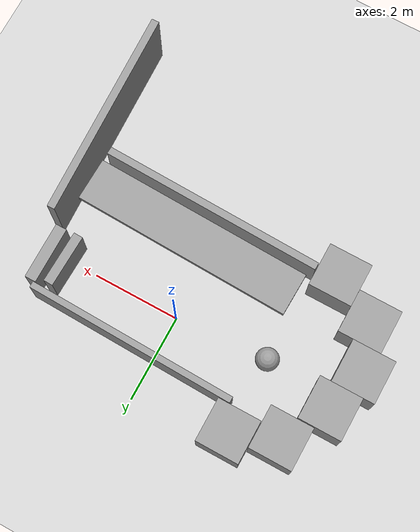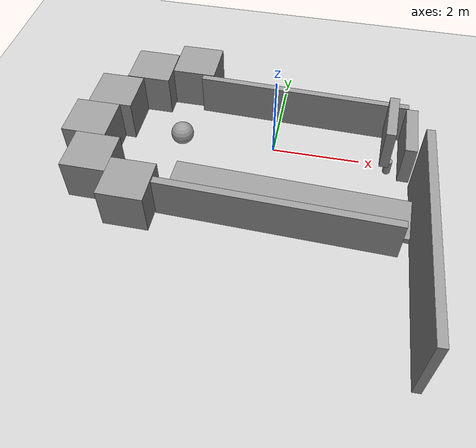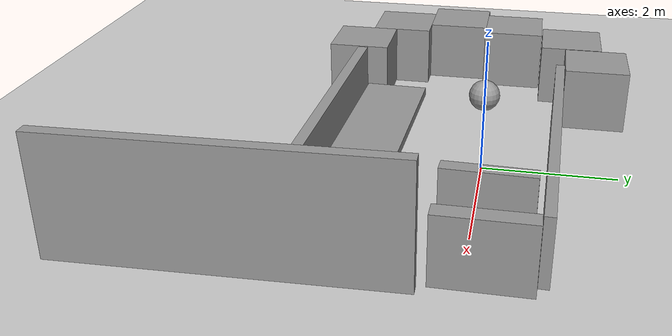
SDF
<sdf version="1.6">
 <world name="default">
  <light name="sun" type="directional">
   <pose>0 0 10 0 -0 0</pose>
   <diffuse>0.8 0.8 0.8 1</diffuse>
   <specular>0.2 0.2 0.2 1</specular>
   <attenuation>
    <range>1000</range>
    <constant>0.9</constant>
    <linear>0.01</linear>
    <quadratic>0.001</quadratic>
   </attenuation>
   <direction>-0.5 0.1 -0.9</direction>
  </light>
  <model name="ground_plane">
   <static>1</static>
   <link name="link">
    <collision name="collision">
     <geometry><plane><normal>0 0 1</normal><size>100 100</size></plane></geometry>
     <surface>
      <contact><collide_bitmask>65535</collide_bitmask></contact>
      <friction><ode><mu>100</mu><mu2>50</mu2></ode></friction>
     </surface>
    </collision>
    <visual name="visual">
     <cast_shadows>0</cast_shadows>
     <geometry><plane><normal>0 0 1</normal><size>100 100</size></plane></geometry>
     <material>
      <script><uri>file://media/materials/scripts/gazebo.material</uri><name>Gazebo/Grey</name></script>
     </material>
    </visual>
   </link>
  </model>
  <gravity>0 0 -9.8</gravity>
  <magnetic_field>6e-06 2.3e-05 -4.2e-05</magnetic_field>
  <atmosphere type="adiabatic"/>
  <physics name="default_physics" default="0" type="ode">
   <max_step_size>0.001</max_step_size>
   <real_time_factor>1</real_time_factor>
   <real_time_update_rate>1000</real_time_update_rate>
  </physics>
  <scene><ambient>0.4 0.4 0.4 1</ambient><background>0.7 0.7 0.7 1</background><shadows>1</shadows></scene>
  <audio><device>default</device></audio>
  <spherical_coordinates>
   <surface_model>EARTH_WGS84</surface_model>
   <latitude_deg>0</latitude_deg>
   <longitude_deg>0</longitude_deg>
   <elevation>0</elevation>
   <heading_deg>0</heading_deg>
  </spherical_coordinates>
  <model name="unit_cylinder">
   <pose>0.409326 -1.6333 0.127663 5.7e-05 5.3e-05 -0.015964</pose>
   <link name="link">
    <inertial>
     <mass>1</mass>
     <inertia><ixx>0.145833</ixx><ixy>0</ixy><ixz>0</ixz><iyy>0.145833</iyy><iyz>0</iyz><izz>0.125</izz></inertia>
    </inertial>
    <collision name="collision">
     <geometry><cylinder><radius>0.102457</radius><length>0.255357</length></cylinder></geometry>
    </collision>
    <visual name="visual">
     <geometry><cylinder><radius>0.102457</radius><length>0.255357</length></cylinder></geometry>
     <material>
      <script><name>Gazebo/Grey</name><uri>file://media/materials/scripts/gazebo.material</uri></script>
     </material>
    </visual>
   </link>
  </model>
  <model name="unit_cylinder_clone">
   <pose>-1.86877 -1.67826 0.127668 -1e-06 4e-06 -0.037116</pose>
   <link name="link">
    <inertial>
     <mass>1</mass>
     <inertia><ixx>0.145833</ixx><ixy>0</ixy><ixz>0</ixz><iyy>0.145833</iyy><iyz>0</iyz><izz>0.125</izz></inertia>
    </inertial>
    <collision name="collision">
     <geometry><cylinder><radius>0.102457</radius><length>0.255357</length></cylinder></geometry>
    </collision>
    <visual name="visual">
     <geometry><cylinder><radius>0.102457</radius><length>0.255357</length></cylinder></geometry>
     <material>
      <script><name>Gazebo/Grey</name><uri>file://media/materials/scripts/gazebo.material</uri></script>
     </material>
    </visual>
   </link>
  </model>
  <model name="unit_cylinder_clone_0">
   <pose>2.61314 -1.73415 0.127679 0 -0 0.018663</pose>
   <link name="link">
    <inertial>
     <mass>1</mass>
     <inertia><ixx>0.145833</ixx><ixy>0</ixy><ixz>0</ixz><iyy>0.145833</iyy><iyz>0</iyz><izz>0.125</izz></inertia>
    </inertial>
    <collision name="collision">
     <geometry><cylinder><radius>0.102457</radius><length>0.255357</length></cylinder></geometry>
    </collision>
    <visual name="visual">
     <geometry><cylinder><radius>0.102457</radius><length>0.255357</length></cylinder></geometry>
     <material>
      <script><name>Gazebo/Grey</name><uri>file://media/materials/scripts/gazebo.material</uri></script>
     </material>
    </visual>
   </link>
  </model>
  <model name="unit_box">
   <pose>0.55962 -1.70347 0.319821 -9.3e-05 0.001701 -1.60105</pose>
   <link name="link">
    <inertial>
     <mass>1</mass>
     <inertia>
      <ixx>0.166667</ixx>
      <ixy>0</ixy>
      <ixz>0</ixz>
      <iyy>0.166667</iyy>
      <iyz>0</iyz>
      <izz>0.166667</izz>
     </inertia>
    </inertial>
    <collision name="collision"><geometry><box><size>1 5.16106 0.128853</size></box></geometry></collision>
    <visual name="visual">
     <geometry><box><size>1 5.16106 0.128853</size></box></geometry>
     <material>
      <script><name>Gazebo/Grey</name><uri>file://media/materials/scripts/gazebo.material</uri></script>
     </material>
    </visual>
   </link>
  </model>
  <model name="unit_box_0">
   <pose>0.394561 -2.32314 0.497608 2.5e-05 -0.000933 -0.026581</pose>
   <link name="link">
    <inertial>
     <mass>1</mass>
     <inertia>
      <ixx>0.166667</ixx>
      <ixy>0</ixy>
      <ixz>0</ixz>
      <iyy>0.166667</iyy>
      <iyz>0</iyz>
      <izz>0.166667</izz>
     </inertia>
    </inertial>
    <collision name="collision"><geometry><box><size>5.13658 0.167013 1</size></box></geometry></collision>
    <visual name="visual">
     <geometry><box><size>5.13658 0.167013 1</size></box></geometry>
     <material>
      <script><name>Gazebo/Grey</name><uri>file://media/materials/scripts/gazebo.material</uri></script>
     </material>
    </visual>
   </link>
  </model>
  <model name="unit_box_1">
   <pose>3.29218 -2.87618 0.887483 0.000423 -1.2e-05 0.032117</pose>
   <link name="link">
    <inertial>
     <mass>1</mass>
     <inertia>
      <ixx>0.166667</ixx>
      <ixy>0</ixy>
      <ixz>0</ixz>
      <iyy>0.166667</iyy>
      <iyz>0</iyz>
      <izz>0.166667</izz>
     </inertia>
    </inertial>
    <collision name="collision"><geometry><box><size>0.173615 4.70136 1.77695</size></box></geometry></collision>
    <visual name="visual">
     <geometry><box><size>0.173615 4.70136 1.77695</size></box></geometry>
     <material>
      <script><name>Gazebo/Grey</name><uri>file://media/materials/scripts/gazebo.material</uri></script>
     </material>
    </visual>
   </link>
  </model>
  <model name="unit_cylinder_0">
   <pose>2.6297 -0.156187 0.163466 0.000271 -0.00375 0.020759</pose>
   <link name="link">
    <inertial>
     <mass>1</mass>
     <inertia><ixx>0.145833</ixx><ixy>0</ixy><ixz>0</ixz><iyy>0.145833</iyy><iyz>0</iyz><izz>0.125</izz></inertia>
    </inertial>
    <collision name="collision">
     <geometry><cylinder><radius>0.0847932</radius><length>0.349942</length></cylinder></geometry>
    </collision>
    <visual name="visual">
     <geometry><cylinder><radius>0.0847932</radius><length>0.349942</length></cylinder></geometry>
     <material>
      <script><name>Gazebo/Grey</name><uri>file://media/materials/scripts/gazebo.material</uri></script>
     </material>
    </visual>
   </link>
  </model>
  <model name="unit_cylinder_0_clone">
   <pose>2.60392 0.667771 0.164201 0.00036 -0.003297 -0.018832</pose>
   <link name="link">
    <inertial>
     <mass>1</mass>
     <inertia><ixx>0.145833</ixx><ixy>0</ixy><ixz>0</ixz><iyy>0.145833</iyy><iyz>0</iyz><izz>0.125</izz></inertia>
    </inertial>
    <collision name="collision">
     <geometry><cylinder><radius>0.0847934</radius><length>0.349942</length></cylinder></geometry>
    </collision>
    <visual name="visual">
     <geometry><cylinder><radius>0.0847934</radius><length>0.349942</length></cylinder></geometry>
     <material>
      <script><name>Gazebo/Grey</name><uri>file://media/materials/scripts/gazebo.material</uri></script>
     </material>
    </visual>
   </link>
  </model>
  <model name="unit_box_2">
   <pose>2.53406 0.228433 0.838492 0.001359 -0.006738 -0.03077</pose>
   <link name="link">
    <inertial>
     <mass>1</mass>
     <inertia>
      <ixx>0.166667</ixx>
      <ixy>0</ixy>
      <ixz>0</ixz>
      <iyy>0.166667</iyy>
      <iyz>0</iyz>
      <izz>0.166667</izz>
     </inertia>
    </inertial>
    <collision name="collision"><geometry><box><size>0.209876 1.18621 1</size></box></geometry></collision>
    <visual name="visual">
     <geometry><box><size>0.209876 1.18621 1</size></box></geometry>
     <material>
      <script><name>Gazebo/Grey</name><uri>file://media/materials/scripts/gazebo.material</uri></script>
     </material>
    </visual>
   </link>
  </model>
  <model name="unit_box_3">
   <pose>2.99855 0.239423 0.5 0 -0 0.000133</pose>
   <link name="link">
    <inertial>
     <mass>1</mass>
     <inertia>
      <ixx>0.166667</ixx>
      <ixy>0</ixy>
      <ixz>0</ixz>
      <iyy>0.166667</iyy>
      <iyz>0</iyz>
      <izz>0.166667</izz>
     </inertia>
    </inertial>
    <collision name="collision"><geometry><box><size>0.257265 1.29575 1</size></box></geometry></collision>
    <visual name="visual">
     <geometry><box><size>0.257265 1.29575 1</size></box></geometry>
     <material>
      <script><name>Gazebo/Grey</name><uri>file://media/materials/scripts/gazebo.material</uri></script>
     </material>
    </visual>
   </link>
  </model>
  <model name="unit_box_4">
   <pose>0.496012 1.03027 0.498162 1.9e-05 -0.000759 -0.025281</pose>
   <link name="link">
    <inertial>
     <mass>1</mass>
     <inertia>
      <ixx>0.166667</ixx>
      <ixy>0</ixy>
      <ixz>0</ixz>
      <iyy>0.166667</iyy>
      <iyz>0</iyz>
      <izz>0.166667</izz>
     </inertia>
    </inertial>
    <collision name="collision"><geometry><box><size>4.8483 0.143581 1</size></box></geometry></collision>
    <visual name="visual">
     <geometry><box><size>4.8483 0.143581 1</size></box></geometry>
     <material>
      <script><name>Gazebo/Grey</name><uri>file://media/materials/scripts/gazebo.material</uri></script>
     </material>
    </visual>
   </link>
  </model>
  <model name="unit_box_5">
   <pose>-2.69354 -2.33214 0.5 0 -0 6e-05</pose>
   <link name="link">
    <inertial>
     <mass>1</mass>
     <inertia>
      <ixx>0.166667</ixx>
      <ixy>0</ixy>
      <ixz>0</ixz>
      <iyy>0.166667</iyy>
      <iyz>0</iyz>
      <izz>0.166667</izz>
     </inertia>
    </inertial>
    <collision name="collision"><geometry><box><size>1 1 1</size></box></geometry></collision>
    <visual name="visual">
     <geometry><box><size>1 1 1</size></box></geometry>
     <material>
      <script><name>Gazebo/Grey</name><uri>file://media/materials/scripts/gazebo.material</uri></script>
     </material>
    </visual>
   </link>
  </model>
  <model name="unit_box_6">
   <pose>-3.69371 -1.73839 0.5 0 -0 0.000296</pose>
   <link name="link">
    <inertial>
     <mass>1</mass>
     <inertia>
      <ixx>0.166667</ixx>
      <ixy>0</ixy>
      <ixz>0</ixz>
      <iyy>0.166667</iyy>
      <iyz>0</iyz>
      <izz>0.166667</izz>
     </inertia>
    </inertial>
    <collision name="collision"><geometry><box><size>1 1 1</size></box></geometry></collision>
    <visual name="visual">
     <geometry><box><size>1 1 1</size></box></geometry>
     <material>
      <script><name>Gazebo/Grey</name><uri>file://media/materials/scripts/gazebo.material</uri></script>
     </material>
    </visual>
   </link>
  </model>
  <model name="unit_box_7">
   <pose>-4.04963 -0.738492 0.5 0 -0 0.000295</pose>
   <link name="link">
    <inertial>
     <mass>1</mass>
     <inertia>
      <ixx>0.166667</ixx>
      <ixy>0</ixy>
      <ixz>0</ixz>
      <iyy>0.166667</iyy>
      <iyz>0</iyz>
      <izz>0.166667</izz>
     </inertia>
    </inertial>
    <collision name="collision"><geometry><box><size>1 1 1</size></box></geometry></collision>
    <visual name="visual">
     <geometry><box><size>1 1 1</size></box></geometry>
     <material>
      <script><name>Gazebo/Grey</name><uri>file://media/materials/scripts/gazebo.material</uri></script>
     </material>
    </visual>
   </link>
  </model>
  <model name="unit_box_8">
   <pose>-3.79517 0.261642 0.499995 0 1e-05 5.3e-05</pose>
   <link name="link">
    <inertial>
     <mass>1</mass>
     <inertia>
      <ixx>0.166667</ixx>
      <ixy>0</ixy>
      <ixz>0</ixz>
      <iyy>0.166667</iyy>
      <iyz>0</iyz>
      <izz>0.166667</izz>
     </inertia>
    </inertial>
    <collision name="collision"><geometry><box><size>1 1 1</size></box></geometry></collision>
    <visual name="visual">
     <geometry><box><size>1 1 1</size></box></geometry>
     <material>
      <script><name>Gazebo/Grey</name><uri>file://media/materials/scripts/gazebo.material</uri></script>
     </material>
    </visual>
   </link>
  </model>
  <model name="unit_box_9">
   <pose>-3.18837 1.27974 0.5 0 -0 0</pose>
   <link name="link">
    <inertial>
     <mass>1</mass>
     <inertia>
      <ixx>0.166667</ixx>
      <ixy>0</ixy>
      <ixz>0</ixz>
      <iyy>0.166667</iyy>
      <iyz>0</iyz>
      <izz>0.166667</izz>
     </inertia>
    </inertial>
    <collision name="collision"><geometry><box><size>1 1 1</size></box></geometry></collision>
    <visual name="visual">
     <geometry><box><size>1 1 1</size></box></geometry>
     <material>
      <script><name>Gazebo/Grey</name><uri>file://media/materials/scripts/gazebo.material</uri></script>
     </material>
    </visual>
   </link>
  </model>
  <model name="unit_box_10">
   <pose>-2.17247 1.67429 0.5 0 -0 0</pose>
   <link name="link">
    <inertial>
     <mass>1</mass>
     <inertia>
      <ixx>0.166667</ixx>
      <ixy>0</ixy>
      <ixz>0</ixz>
      <iyy>0.166667</iyy>
      <iyz>0</iyz>
      <izz>0.166667</izz>
     </inertia>
    </inertial>
    <collision name="collision"><geometry><box><size>1 1 1</size></box></geometry></collision>
    <visual name="visual">
     <geometry><box><size>1 1 1</size></box></geometry>
     <material>
      <script><name>Gazebo/Grey</name><uri>file://media/materials/scripts/gazebo.material</uri></script>
     </material>
    </visual>
   </link>
  </model>
  <model name="unit_sphere">
   <pose>-2.15499 -0.126599 0.264347 0 -0 0</pose>
   <link name="link">
    <inertial>
     <mass>1</mass>
     <inertia><ixx>0.1</ixx><ixy>0</ixy><ixz>0</ixz><iyy>0.1</iyy><iyz>0</iyz><izz>0.1</izz></inertia>
    </inertial>
    <collision name="collision"><geometry><sphere><radius>0.264347</radius></sphere></geometry></collision>
    <visual name="visual">
     <geometry><sphere><radius>0.264347</radius></sphere></geometry>
     <material>
      <script><name>Gazebo/Grey</name><uri>file://media/materials/scripts/gazebo.material</uri></script>
     </material>
    </visual>
   </link>
  </model>
 </world>
</sdf>
